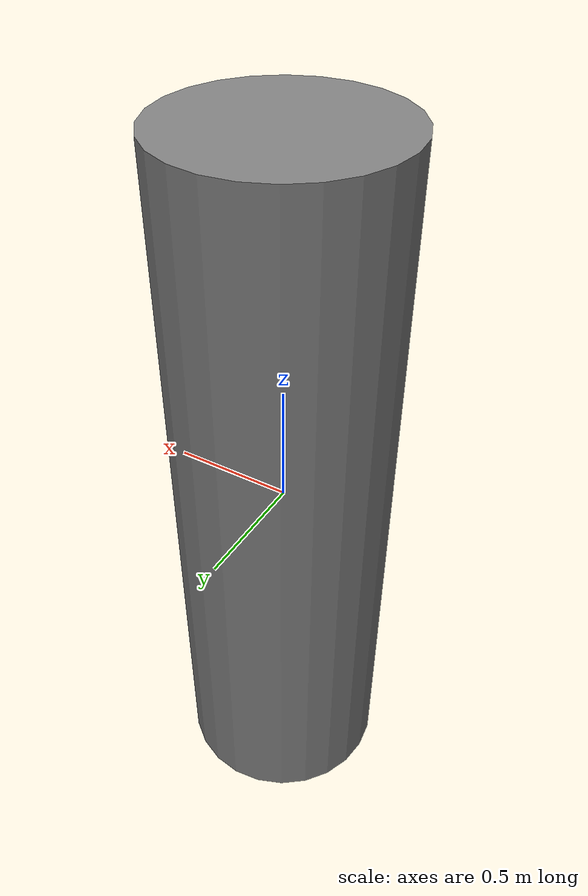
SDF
<?xml version="1.0" ?>
<sdf version="1.8">
  <model name="structural_pillar">
    <static>true</static>
    <link name="pillar_link">
      <collision name="collision">
        <geometry>
          <cylinder>
            <radius>0.45</radius>
            <length>3.0</length>
          </cylinder>
        </geometry>
      </collision>
      <visual name="visual">
        <geometry>
          <cylinder>
            <radius>0.45</radius>
            <length>3.0</length>
          </cylinder>
        </geometry>
        <material>
          <ambient>0.5 0.5 0.5 1</ambient>
          <diffuse>0.5 0.5 0.5 1</diffuse>
        </material>
      </visual>
    </link>
  </model>
</sdf>
